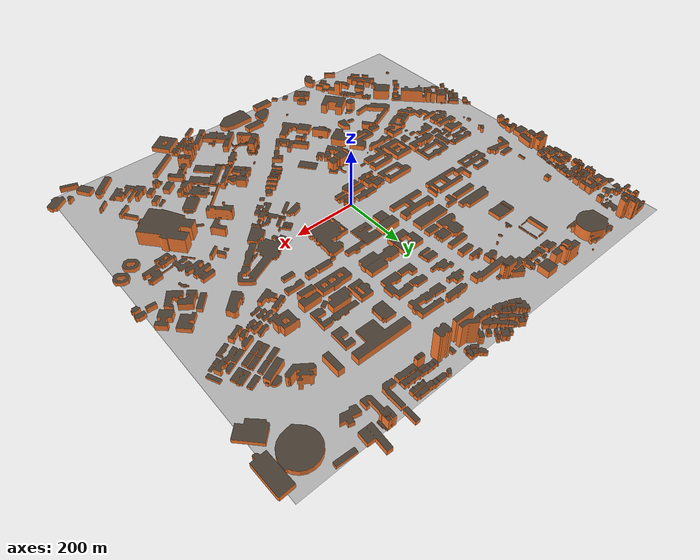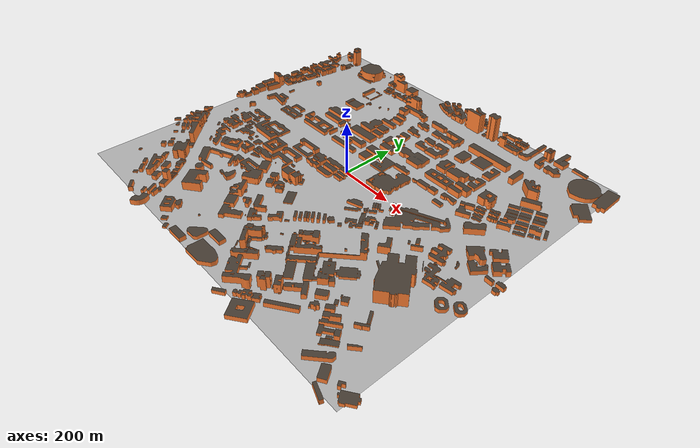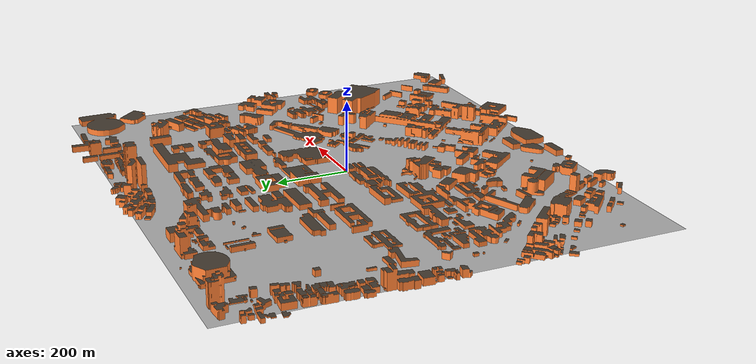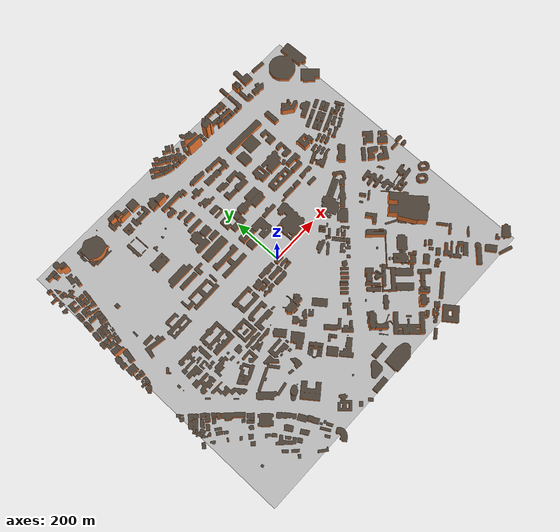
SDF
<?xml version="1.0"?>
<sdf version="1.4">
  <world name="default">
    <!-- A gazebo links attacher -->
    <plugin name="ros_link_attacher_plugin" filename="libgazebo_ros_link_attacher.so" />
    <scene>
      <sky>
        <clouds>
          <speed>12</speed>
        </clouds>
      </sky>
      <ambient>0.95 0.95 0.95 1</ambient>
      <background>0.3 0.3 0.3 1</background>
      <shadows>true</shadows>
    </scene>
    <gui>
      <camera name='user_camera'>
        <pose>146.61 234.574 22.3495 0 0.168 -1.772</pose>
        <view_controller>orbit</view_controller>
        <projection_type>perspective</projection_type>
      </camera>
    </gui>

    <!-- A global light source -->
    <include>
      <uri>model://sun</uri>
    </include>
    <include>
      <uri>model://ntu_campus</uri>
    </include>

    <model name="land_pad_0">
      <include>
        <uri>model://land_pad</uri>
        <pose>95 227 17.246 0 0 0</pose>
      </include>
    </model>

    <model name="land_pad_1">
      <include>
        <uri>model://land_pad</uri>
        <pose>100 227 17.246 0 0 0</pose>
      </include>
    </model>

    <model name="land_pad_2">
      <include>
        <uri>model://land_pad</uri>
        <pose>105 227 17.246 0 0 0</pose>
      </include>
    </model>

    <model name="land_pad_3">
      <include>
        <uri>model://land_pad</uri>
        <pose>110 227 17.246 0 0 0</pose>
      </include>
    </model>

    <model name="land_pad_4">
      <include>
        <uri>model://land_pad</uri>
        <pose>115 227 17.246 0 0 0</pose>
      </include>
    </model>

    <model name="land_pad_5">
      <include>
        <uri>model://land_pad</uri>
        <pose>120 227 17.246 0 0 0</pose>
      </include>
    </model>

    <model name="land_pad_6">
      <include>
        <uri>model://land_pad</uri>
        <pose>125 227 17.246 0 0 0</pose>
      </include>
    </model>

    <model name="land_pad_7">
      <include>
        <uri>model://land_pad</uri>
        <pose>130 227 17.246 0 0 0</pose>
      </include>
    </model>

    <model name="land_pad_8">
      <include>
        <uri>model://land_pad</uri>
        <pose>135 227 17.246 0 0 0</pose>
      </include>
    </model>

    <model name="land_pad_9">
      <include>
        <uri>model://land_pad</uri>
        <pose>140 227 17.246 0 0 0</pose>
      </include>
    </model>

    <spherical_coordinates>
      <surface_model>EARTH_WGS84</surface_model>
      <latitude_deg>25.017</latitude_deg>
      <longitude_deg>121.5396</longitude_deg>
      <elevation>0</elevation>
    </spherical_coordinates>

    <physics name='default_physics' default='0' type='ode'>
      <gravity>0 0 -9.8066</gravity>
      <ode>
        <solver>
          <type>quick</type>
          <iters>10</iters>
          <sor>1.3</sor>
          <use_dynamic_moi_rescaling>0</use_dynamic_moi_rescaling>
        </solver>
        <constraints>
          <cfm>0</cfm>
          <erp>0.2</erp>
          <contact_max_correcting_vel>100</contact_max_correcting_vel>
          <contact_surface_layer>0.001</contact_surface_layer>
        </constraints>
      </ode>
      <max_step_size>0.004</max_step_size>
      <real_time_factor>1</real_time_factor>
      <real_time_update_rate>250</real_time_update_rate>
      <magnetic_field>6.0e-6 2.3e-5 -4.2e-5</magnetic_field>
    </physics>
  </world>
</sdf>

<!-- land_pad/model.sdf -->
<sdf version='1.7'>
  <model name='land_pad'>
    <link name='link'>
      <inertial>
        <mass>0.001</mass>
        <inertia>
          <ixx>0.00001</ixx>
          <ixy>0</ixy>
          <ixz>0</ixz>
          <iyy>0.00001</iyy>
          <iyz>0</iyz>
          <izz>0.00001</izz>
        </inertia>
        <pose>0 0 0 0 -0 0</pose>
      </inertial>
      <self_collide>0</self_collide>
      <enable_wind>0</enable_wind>
      <kinematic>0</kinematic>
      <pose>0 0 0 0 -0 0</pose>
      <gravity>1</gravity>
      <visual name='visual'>
        <geometry>
          <mesh>
            <scale>1 1 1</scale>
            <uri>model://land_pad/meshes/land_pad.dae</uri>
          </mesh>
        </geometry>
        <material>
          <script>
            <name>landPad/Diffuse</name>
            <uri>model://land_pad/materials/scripts</uri>
            <uri>model://land_pad/materials/textures</uri>
          </script>
          <shader type='pixel'>
            <normal_map>__default__</normal_map>
          </shader>
        </material>
        <pose>0 0 0 0 -0 0</pose>
        <transparency>0</transparency>
        <cast_shadows>1</cast_shadows>
      </visual>
      <collision name='collision'>
        <laser_retro>0</laser_retro>
        <max_contacts>10</max_contacts>
        <pose>0 0 0 0 -0 0</pose>
        <geometry>
          <box>
            <size>2.0 2.0 0.05</size>
          </box>
        </geometry>
        <surface>
          <friction>
            <ode>
              <mu>1</mu>
              <mu2>1</mu2>
              <fdir1>0 0 0</fdir1>
              <slip1>0</slip1>
              <slip2>0</slip2>
            </ode>
            <torsional>
              <coefficient>1</coefficient>
              <patch_radius>0</patch_radius>
              <surface_radius>0</surface_radius>
              <use_patch_radius>1</use_patch_radius>
              <ode>
                <slip>0</slip>
              </ode>
            </torsional>
          </friction>
          <bounce>
            <restitution_coefficient>0</restitution_coefficient>
            <threshold>1e+06</threshold>
          </bounce>
          <contact>
            <collide_without_contact>0</collide_without_contact>
            <collide_without_contact_bitmask>1</collide_without_contact_bitmask>
            <collide_bitmask>1</collide_bitmask>
            <ode>
              <soft_cfm>0</soft_cfm>
              <soft_erp>0.2</soft_erp>
              <kp>1e+13</kp>
              <kd>1</kd>
              <max_vel>0.01</max_vel>
              <min_depth>0</min_depth>
            </ode>
            <bullet>
              <split_impulse>1</split_impulse>
              <split_impulse_penetration_threshold>-0.01</split_impulse_penetration_threshold>
              <soft_cfm>0</soft_cfm>
              <soft_erp>0.2</soft_erp>
              <kp>1e+13</kp>
              <kd>1</kd>
            </bullet>
          </contact>
        </surface>
      </collision>
    </link>
    <static>1</static>
    <allow_auto_disable>1</allow_auto_disable>
  </model>
</sdf>

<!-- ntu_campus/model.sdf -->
<sdf version="1.5">
  <model name="ntu">
    <pose>0 0 0 0 0 0</pose>
    <static>true</static>
    <link name="body">
      <visual name="visual">
        <geometry>
          <mesh>
            <uri>model://ntu_campus/media/Terrain.dae</uri>
          </mesh>
        </geometry>
      </visual>
      <collision name="collision">
        <geometry>
          <mesh>
            <uri>model://ntu_campus/media/Terrain.dae</uri>
          </mesh>
        </geometry>
      </collision>
    </link>

    <link name="buildings">
      <visual name="visual">
        <geometry>
          <mesh>
            <uri>model://ntu_campus/media/Buildings.dae</uri>
          </mesh>
        </geometry>
      </visual>
      <collision name="collision">
        <geometry>
          <mesh>
            <uri>model://ntu_campus/media/Buildings.dae</uri>
          </mesh>
        </geometry>
      </collision>
    </link>
  </model>
</sdf>
